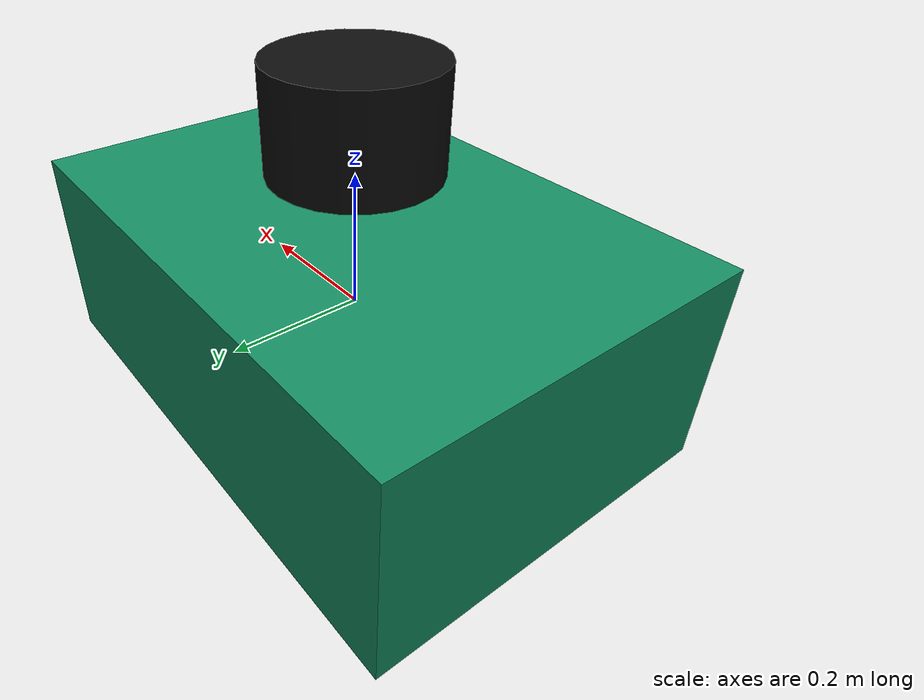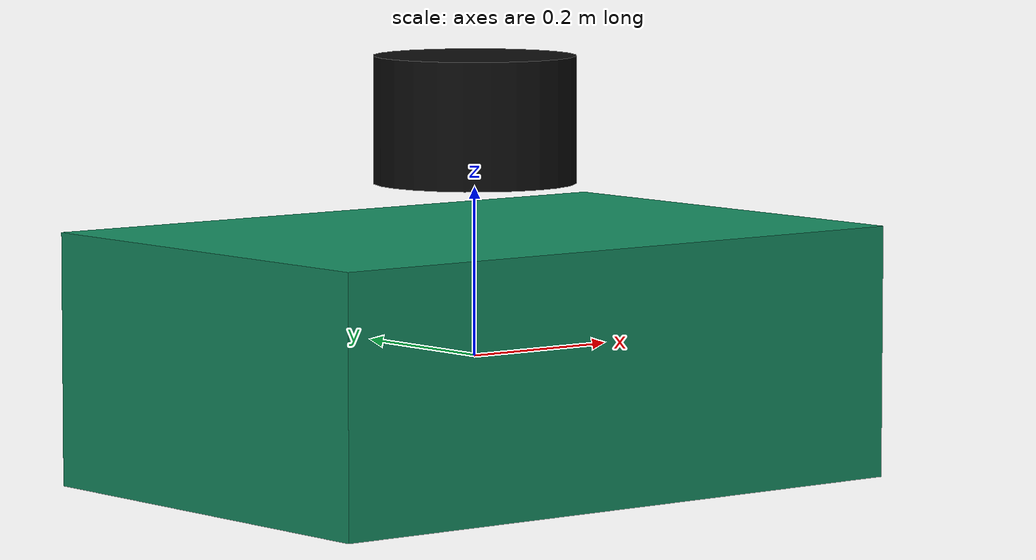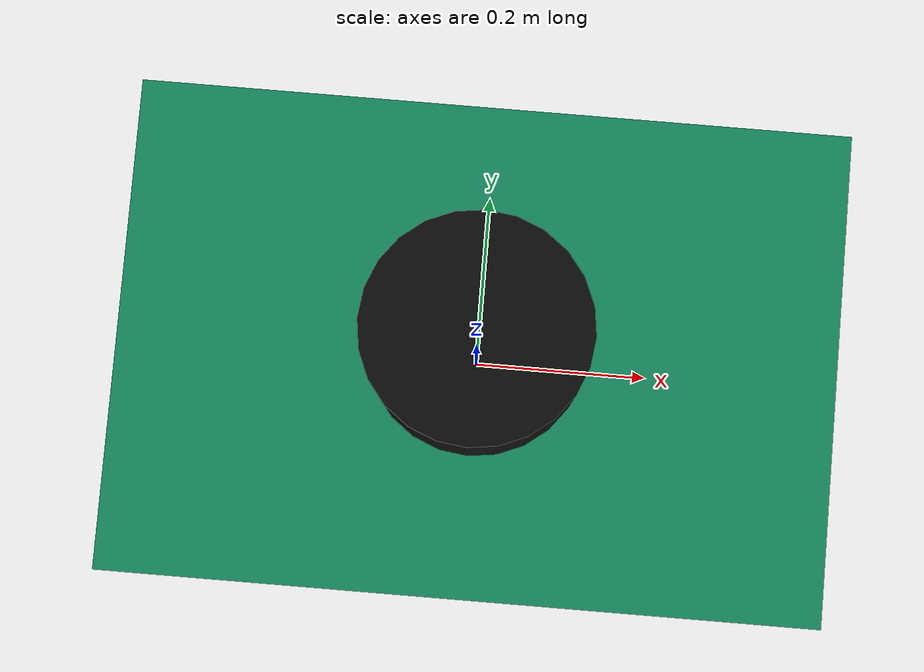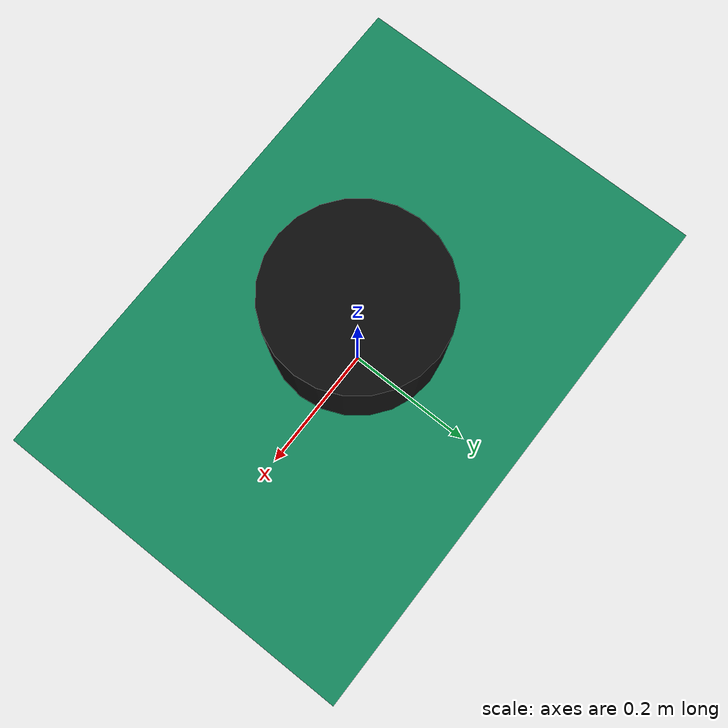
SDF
<?xml version="1.0"?>
<sdf version="1.9">
  <!-- Ideal holonomic inspection robot. VelocityControl applies all three
       linear and all three angular components of gz.msgs.Twist. -->
  <model name="six_dof_robot" canonical_link="base_link">
    <self_collide>false</self_collide>
    <allow_auto_disable>false</allow_auto_disable>

    <link name="base_link">
      <inertial>
        <mass>12.0</mass>
        <inertia>
          <ixx>0.42</ixx><iyy>0.55</iyy><izz>0.68</izz>
          <ixy>0</ixy><ixz>0</ixz><iyz>0</iyz>
        </inertia>
      </inertial>
      <collision name="body_collision">
        <geometry><box><size>0.80 0.55 0.30</size></box></geometry>
      </collision>
      <visual name="body_visual">
        <geometry><box><size>0.80 0.55 0.30</size></box></geometry>
        <material>
          <ambient>0.08 0.55 0.38 1</ambient>
          <diffuse>0.08 0.55 0.38 1</diffuse>
        </material>
      </visual>
      <sensor name="imu" type="imu">
        <always_on>true</always_on>
        <update_rate>200</update_rate>
        <enable_metrics>true</enable_metrics>
      </sensor>
    </link>

    <link name="lidar_link">
      <pose>0 0 0.28 0 0 0</pose>
      <inertial>
        <mass>1.0</mass>
        <inertia>
          <ixx>0.0055</ixx><iyy>0.0055</iyy><izz>0.0072</izz>
          <ixy>0</ixy><ixz>0</ixz><iyz>0</iyz>
        </inertia>
      </inertial>
      <collision name="collision">
        <geometry><cylinder><radius>0.12</radius><length>0.15</length></cylinder></geometry>
      </collision>
      <visual name="visual">
        <geometry><cylinder><radius>0.12</radius><length>0.15</length></cylinder></geometry>
        <material><ambient>0.05 0.05 0.05 1</ambient><diffuse>0.05 0.05 0.05 1</diffuse></material>
      </visual>
      <sensor name="lidar" type="gpu_lidar">
        <always_on>true</always_on>
        <update_rate>10</update_rate>
        <visualize>false</visualize>
        <ray>
          <scan>
            <horizontal>
              <samples>720</samples><resolution>1</resolution>
              <min_angle>-3.14159265</min_angle><max_angle>3.14159265</max_angle>
            </horizontal>
            <vertical>
              <samples>16</samples><resolution>1</resolution>
              <min_angle>-0.261799</min_angle><max_angle>0.261799</max_angle>
            </vertical>
          </scan>
          <range><min>0.30</min><max>50.0</max><resolution>0.01</resolution></range>
          <noise><type>gaussian</type><mean>0.0</mean><stddev>0.01</stddev></noise>
        </ray>
      </sensor>
    </link>

    <joint name="lidar_joint" type="fixed">
      <parent>base_link</parent><child>lidar_link</child>
    </joint>

    <plugin filename="gz-sim-velocity-control-system"
            name="gz::sim::systems::VelocityControl">
      <topic>/model/drone/cmd_vel</topic>
    </plugin>
    <plugin filename="gz-sim-odometry-publisher-system"
            name="gz::sim::systems::OdometryPublisher">
      <dimensions>3</dimensions>
      <odom_frame>drone/odom</odom_frame>
      <robot_base_frame>drone/base_link</robot_base_frame>
      <odom_publish_frequency>50</odom_publish_frequency>
      <odom_topic>/model/drone/odometry</odom_topic>
    </plugin>
    <plugin filename="gz-sim-pose-publisher-system" name="gz::sim::systems::PosePublisher">
      <publish_model_pose>true</publish_model_pose>
      <publish_link_pose>false</publish_link_pose>
      <publish_collision_pose>false</publish_collision_pose>
      <publish_visual_pose>false</publish_visual_pose>
      <publish_sensor_pose>false</publish_sensor_pose>
      <publish_nested_model_pose>false</publish_nested_model_pose>
      <use_pose_vector_msg>true</use_pose_vector_msg>
      <static_publisher>false</static_publisher>
      <update_frequency>30</update_frequency>
    </plugin>
  </model>
</sdf>
